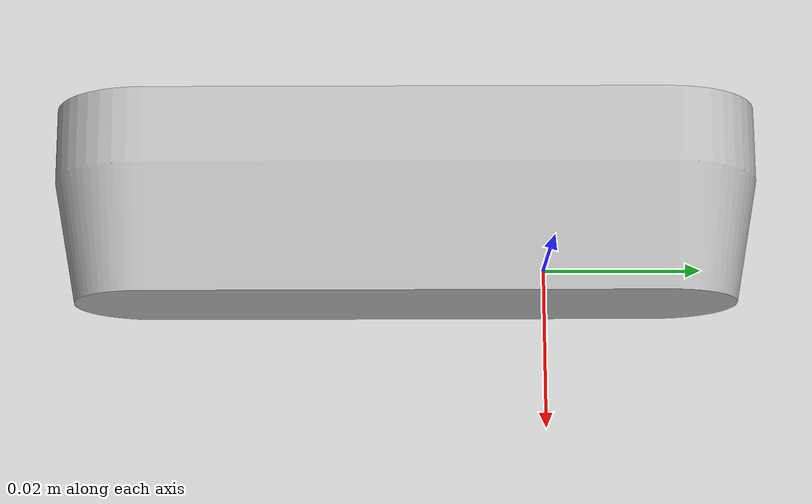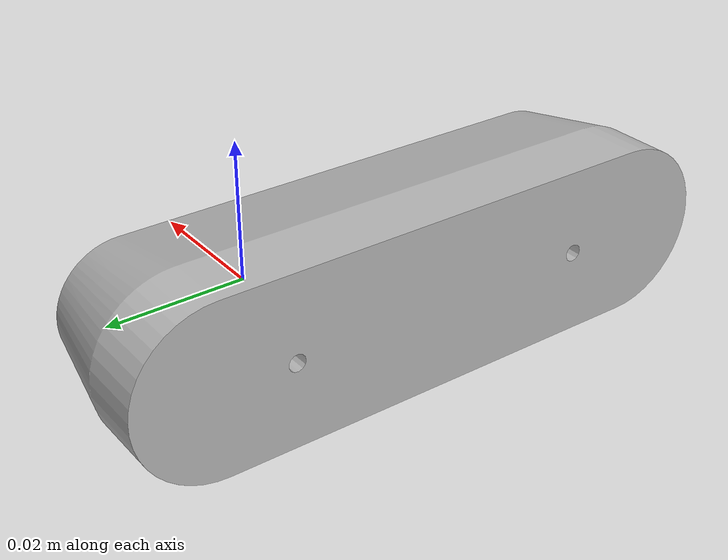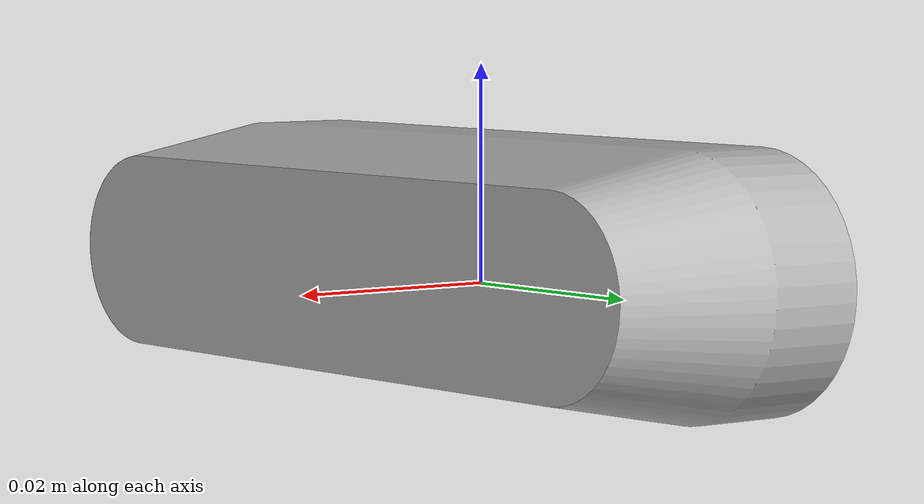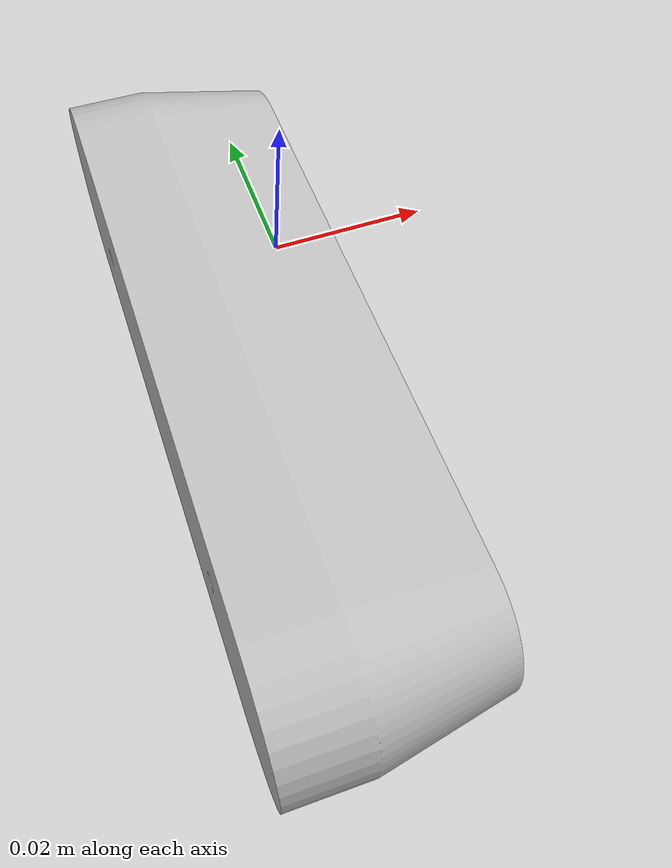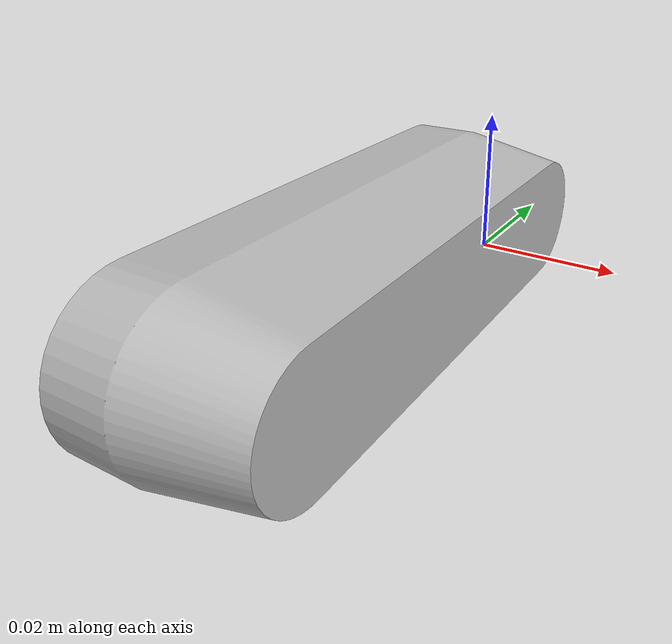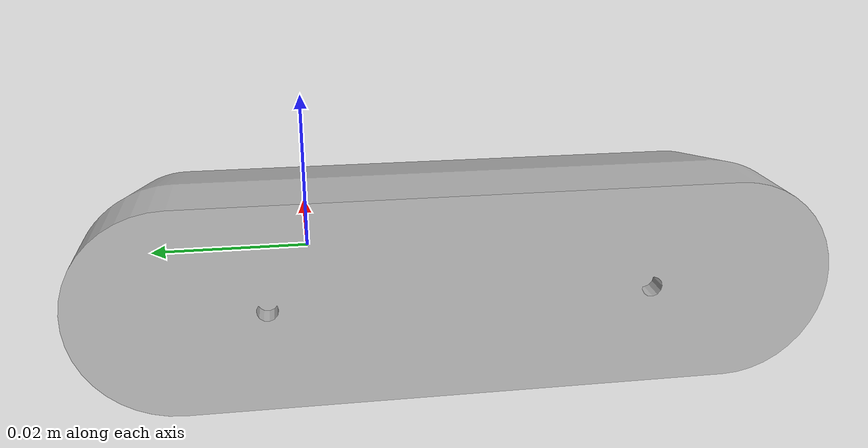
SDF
<?xml version='1.0'?>
<sdf version='1.7'>
  <model name="RealSenseD415">
    <pose>0 0 0 0 0 0 0</pose>
    <link name="camera">
      <visual name="camera_visual">
        <pose>0 0 0 0 0 0 0</pose>
        <geometry>
          <mesh>
            <uri>model://RealSenseD415/camera.stl</uri>
            <scale>0.001 0.001 0.001</scale>
          </mesh>
        </geometry>
      </visual>
      <collision name="camera_collision">
        <pose>0 0 0 0 0 0 0</pose>
        <geometry>
          <mesh>
            <uri>model://RealSenseD415/camera.stl</uri>
            <scale>0.001 0.001 0.001</scale>
          </mesh>
        </geometry>
      </collision>
    </link>
    <static>1</static>
  </model>
</sdf>
